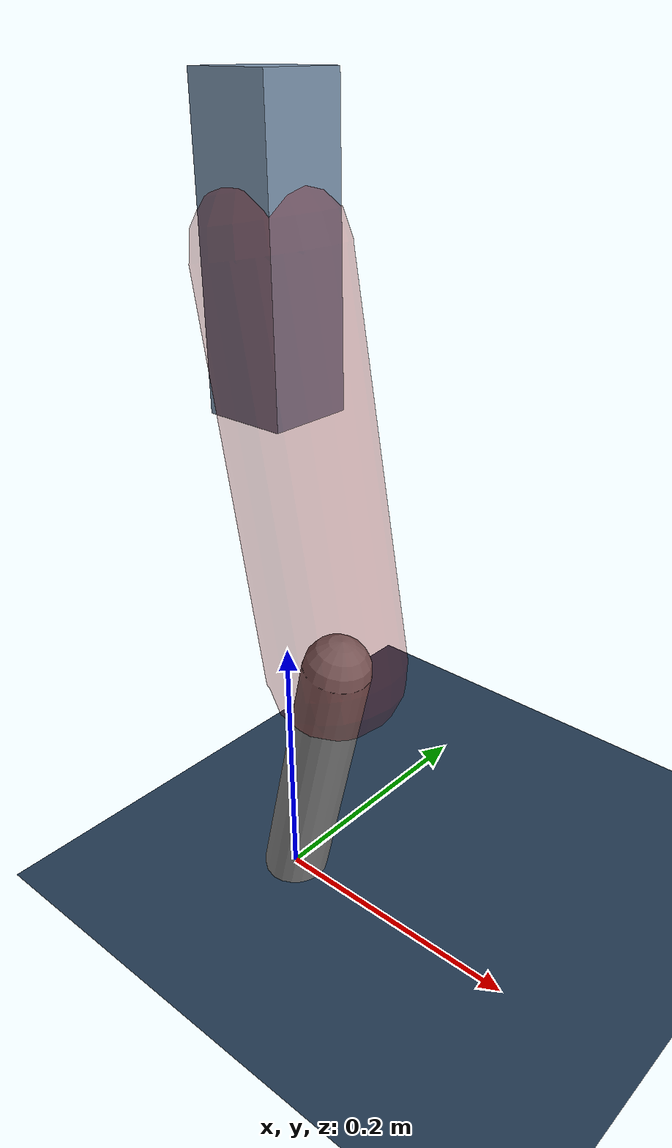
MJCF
<mujoco model="Hopper2D">
	<compiler inertiafromgeom="true" angle="radian" />
	<option timestep="0.001" integrator="implicit" cone="elliptic" solver="Newton" tolerance="1e-10" />

	<default>
		<geom contype="1" conaffinity="1" condim="3" friction="2 0.005 0.0001" solref="0.005 1" />
		<joint limited="true" damping="0.1" />
	</default>

	<asset>
		<texture name="skybox" type="skybox" builtin="gradient" rgb1=".4 .6 .8" rgb2="0 0 0" width="800" height="800" />
		<texture name="grid" type="2d" builtin="checker" rgb1=".1 .2 .3" rgb2=".2 .3 .4" width="300" height="300" mark="edge" markrgb=".2 .3 .4" />
		<material name="ground" texture="grid" texrepeat="1 1" texuniform="true" reflectance="0.1" />
		<material name="leg" rgba="0.5 0.6 0.7 1" />
	</asset>

	<worldbody>

		<geom name="floor" type="plane" size="5 5 0.25" material="ground" />

		<light directional="false" diffuse="0.8 0.8 0.8" specular="0.3 0.3 0.3" pos="0 0 2" dir="0 0 -1" />
		<light mode="targetbodycom" target="base" directional="false" diffuse="0.8 0.8 0.8" specular="0.3 0.3 0.3" pos="0 0 2" dir="0 0 -1" />

		<camera name="fixed" pos="0 -2 1" xyaxes="1 0 0 0 0 1" />
		<camera name="tracking" mode="trackcom" pos="0 -3 1" />

		<body name="root" pos="0 0 0.48127605138719276">
			<joint name="slide_x" type="slide" axis="1 0 0" range="-100 100" />
			<joint name="slide_z" type="slide" axis="0 0 1" range="0 10" />

			<body name="base" pos="0 0 0">
				<geom name="torso" type="box" size="0.03 0.03 0.1" mass="3.0380000000000003" material="leg" />

				<body name="link1" pos="0 0 0" euler="0 1.3960839404567063 0">
					<joint type="hinge" axis="0 -1 0" pos="0 0 0" name="hinge1" limited="true" range="-3.14 3.14" stiffness="0" damping="0.1" />
					<geom name="thigh" type="capsule" fromto="0 0 0 0.2806517595057011 0 0" size="0.05" rgba="0.5 0 0 0.3" mass="0.9368597506653928" />

					<body name="link2" pos="0.2806517595057011 0 0" euler="0 0.40845242988684016 0">
						<joint type="hinge" axis="0 -1 0" pos="0 0 0" name="hinge2" limited="true" range="-3.14 3.14" stiffness="0" damping="0.1" />
						<geom name="shank" type="capsule" fromto="0 0 0 0.2106242918814917 0 0" size="0.025" mass="0.4097994335051934" />

					</body>
				</body>
			</body>
		</body>
	</worldbody>

	<actuator>
		<motor name="torque1" joint="hinge1" ctrlrange="-60.861829736886754 60.861829736886754" ctrllimited="true" gear="1" />
		<motor name="torque2" joint="hinge2" ctrlrange="-78.28188802761059 78.28188802761059" ctrllimited="true" gear="1" />
	</actuator>
</mujoco>
